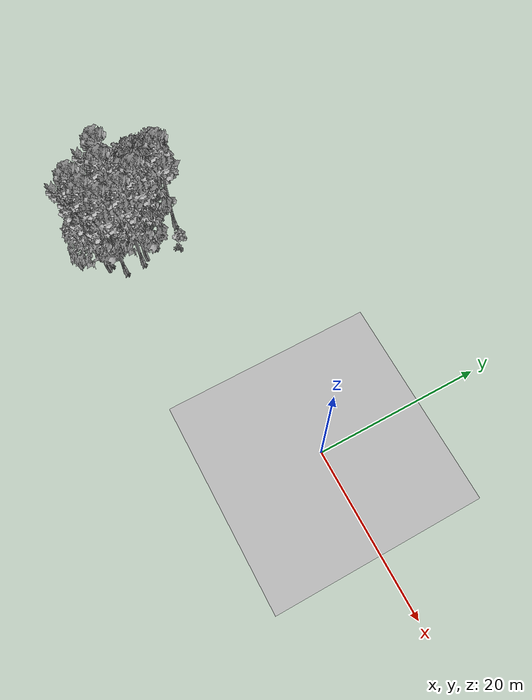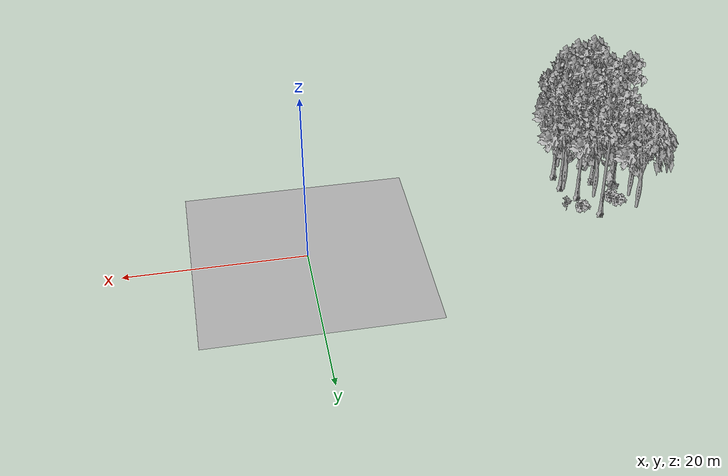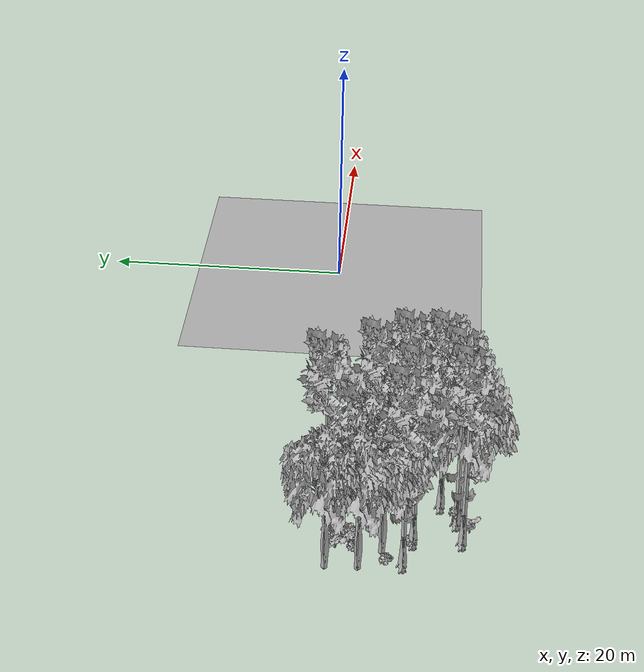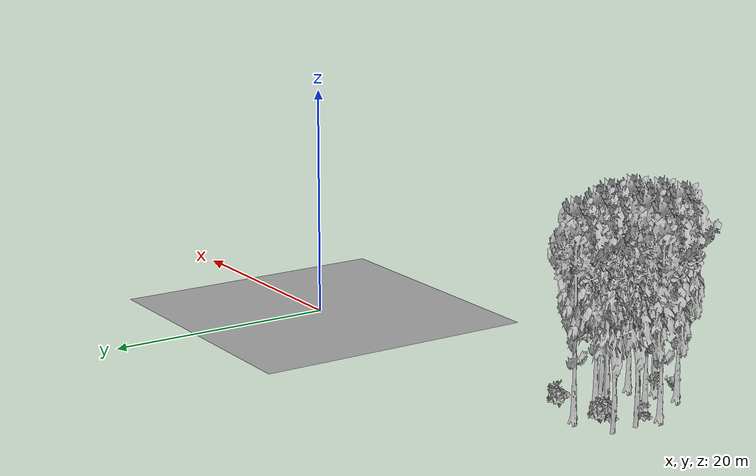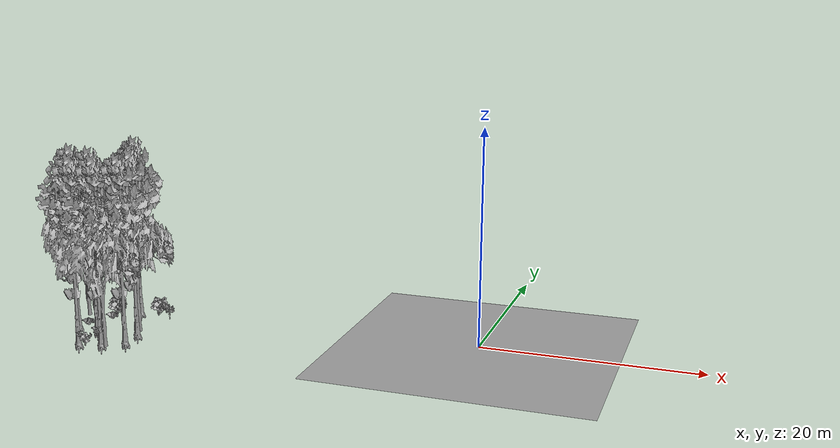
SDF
<sdf version="1.7">
 <world name="default">
  <model name="ground_plane">
   <static>1</static>
   <link name="link">
    <collision name="collision">
     <pose>-50 0 0 0 -0 0</pose>
     <geometry><plane><normal>0 0 1</normal><size>80 80</size></plane></geometry>
     <surface><contact><ode><min_depth>0.01</min_depth><max_vel>0</max_vel></ode></contact></surface>
    </collision>
    <visual name="grass">
     <cast_shadows>0</cast_shadows>
     <geometry>
      <mesh>
       <scale>0.46714285714285714 0.46714285714285714 0.1</scale>
       <uri>file://grass_plane/meshes/grass_plane.dae</uri>
      </mesh>
     </geometry>
    </visual>
   </link>
  </model>
  <model name="Tree 26">
   <static>1</static>
   <pose>-34.21865111880474 -4.678631937713277 0 1.57079 -0 0</pose>
   <link name="link">
    <collision name="collision">
     <geometry><mesh><scale>3.5 5 3.5</scale><uri>model://tree_2/meshes/tree_2.obj</uri></mesh></geometry>
    </collision>
    <visual name="visual">
     <geometry><mesh><scale>3.5 5 3.5</scale><uri>model://tree_2/meshes/tree_2.obj</uri></mesh></geometry>
    </visual>
   </link>
  </model>
  <model name="Tree 41">
   <static>1</static>
   <pose>-30.94688762826279 -7.348983029123119 0 1.57079 -0 0</pose>
   <link name="link">
    <collision name="collision">
     <geometry><mesh><scale>3.5 5 3.5</scale><uri>model://tree_9/meshes/tree_9.obj</uri></mesh></geometry>
    </collision>
    <visual name="visual">
     <geometry><mesh><scale>3.5 5 3.5</scale><uri>model://tree_9/meshes/tree_9.obj</uri></mesh></geometry>
    </visual>
   </link>
  </model>
  <model name="Tree 46">
   <static>1</static>
   <pose>-32.26716375280148 -5.137569281272789 0 1.57079 -0 0</pose>
   <link name="link">
    <collision name="collision">
     <geometry><mesh><scale>3.5 5 3.5</scale><uri>model://tree_9/meshes/tree_9.obj</uri></mesh></geometry>
    </collision>
    <visual name="visual">
     <geometry><mesh><scale>3.5 5 3.5</scale><uri>model://tree_9/meshes/tree_9.obj</uri></mesh></geometry>
    </visual>
   </link>
  </model>
  <model name="Tree 64">
   <static>1</static>
   <pose>-36.51963928887907 -5.733501632266751 0 1.57079 -0 0</pose>
   <link name="link">
    <collision name="collision">
     <geometry><mesh><scale>3.5 5 3.5</scale><uri>model://tree_2/meshes/tree_2.obj</uri></mesh></geometry>
    </collision>
    <visual name="visual">
     <geometry><mesh><scale>3.5 5 3.5</scale><uri>model://tree_2/meshes/tree_2.obj</uri></mesh></geometry>
    </visual>
   </link>
  </model>
  <model name="Tree 71">
   <static>1</static>
   <pose>-33.94451784907528 -1.6375399973635112 0 1.57079 -0 0</pose>
   <link name="link">
    <collision name="collision">
     <geometry><mesh><scale>3.5 5 3.5</scale><uri>model://tree_9/meshes/tree_9.obj</uri></mesh></geometry>
    </collision>
    <visual name="visual">
     <geometry><mesh><scale>3.5 5 3.5</scale><uri>model://tree_9/meshes/tree_9.obj</uri></mesh></geometry>
    </visual>
   </link>
  </model>
  <model name="Tree 205">
   <static>1</static>
   <pose>-37.38394206061128 -7.219815327608778 0 1.57079 -0 0</pose>
   <link name="link">
    <collision name="collision">
     <geometry><mesh><scale>3.5 5 3.5</scale><uri>model://tree_9/meshes/tree_9.obj</uri></mesh></geometry>
    </collision>
    <visual name="visual">
     <geometry><mesh><scale>3.5 5 3.5</scale><uri>model://tree_9/meshes/tree_9.obj</uri></mesh></geometry>
    </visual>
   </link>
  </model>
  <model name="Tree 217">
   <static>1</static>
   <pose>-30.804086467539534 -9.700078650680979 0 1.57079 -0 0</pose>
   <link name="link">
    <collision name="collision">
     <geometry><mesh><scale>3.5 5 3.5</scale><uri>model://tree_9/meshes/tree_9.obj</uri></mesh></geometry>
    </collision>
    <visual name="visual">
     <geometry><mesh><scale>3.5 5 3.5</scale><uri>model://tree_9/meshes/tree_9.obj</uri></mesh></geometry>
    </visual>
   </link>
  </model>
  <model name="Tree 253">
   <static>1</static>
   <pose>-38.319234094890376 -4.136180356128563 0 1.57079 -0 0</pose>
   <link name="link">
    <collision name="collision">
     <geometry><mesh><scale>3.5 5 3.5</scale><uri>model://tree_2/meshes/tree_2.obj</uri></mesh></geometry>
    </collision>
    <visual name="visual">
     <geometry><mesh><scale>3.5 5 3.5</scale><uri>model://tree_2/meshes/tree_2.obj</uri></mesh></geometry>
    </visual>
   </link>
  </model>
  <model name="Tree 295">
   <static>1</static>
   <pose>-31.16436731004118 -6.689217390887343 0 1.57079 -0 0</pose>
   <link name="link">
    <collision name="collision">
     <geometry><mesh><scale>3.5 5 3.5</scale><uri>model://tree_2/meshes/tree_2.obj</uri></mesh></geometry>
    </collision>
    <visual name="visual">
     <geometry><mesh><scale>3.5 5 3.5</scale><uri>model://tree_2/meshes/tree_2.obj</uri></mesh></geometry>
    </visual>
   </link>
  </model>
  <model name="Tree 309">
   <static>1</static>
   <pose>-31.930083497999693 -11.384446646818613 0 1.57079 -0 0</pose>
   <link name="link">
    <collision name="collision">
     <geometry><mesh><scale>3.5 5 3.5</scale><uri>model://tree_2/meshes/tree_2.obj</uri></mesh></geometry>
    </collision>
    <visual name="visual">
     <geometry><mesh><scale>3.5 5 3.5</scale><uri>model://tree_2/meshes/tree_2.obj</uri></mesh></geometry>
    </visual>
   </link>
  </model>
  <model name="Tree 442">
   <static>1</static>
   <pose>-32.593059270552914 -10.885589639417574 0 1.57079 -0 0</pose>
   <link name="link">
    <collision name="collision">
     <geometry><mesh><scale>3.5 5 3.5</scale><uri>model://tree_9/meshes/tree_9.obj</uri></mesh></geometry>
    </collision>
    <visual name="visual">
     <geometry><mesh><scale>3.5 5 3.5</scale><uri>model://tree_9/meshes/tree_9.obj</uri></mesh></geometry>
    </visual>
   </link>
  </model>
  <model name="Tree 477">
   <static>1</static>
   <pose>-34.66852728274036 -11.358503340210511 0 1.57079 -0 0</pose>
   <link name="link">
    <collision name="collision">
     <geometry><mesh><scale>3.5 5 3.5</scale><uri>model://tree_9/meshes/tree_9.obj</uri></mesh></geometry>
    </collision>
    <visual name="visual">
     <geometry><mesh><scale>3.5 5 3.5</scale><uri>model://tree_9/meshes/tree_9.obj</uri></mesh></geometry>
    </visual>
   </link>
  </model>
  <model name="Tree 572">
   <static>1</static>
   <pose>-34.927748254431435 -7.854634039136926 0 1.57079 -0 0</pose>
   <link name="link">
    <collision name="collision">
     <geometry><mesh><scale>3.5 5 3.5</scale><uri>model://tree_9/meshes/tree_9.obj</uri></mesh></geometry>
    </collision>
    <visual name="visual">
     <geometry><mesh><scale>3.5 5 3.5</scale><uri>model://tree_9/meshes/tree_9.obj</uri></mesh></geometry>
    </visual>
   </link>
  </model>
  <model name="Tree 631">
   <static>1</static>
   <pose>-38.419032252062564 -1.8267353542821354 0 1.57079 -0 0</pose>
   <link name="link">
    <collision name="collision">
     <geometry><mesh><scale>3.5 5 3.5</scale><uri>model://tree_2/meshes/tree_2.obj</uri></mesh></geometry>
    </collision>
    <visual name="visual">
     <geometry><mesh><scale>3.5 5 3.5</scale><uri>model://tree_2/meshes/tree_2.obj</uri></mesh></geometry>
    </visual>
   </link>
  </model>
  <model name="Bush 40">
   <static>1</static>
   <pose>-33.63839044306999 -11.841959616744823 0 1.57079 -0 0</pose>
   <link name="link">
    <collision name="collision">
     <geometry><mesh><scale>2 2 2</scale><uri>model://bush_0/meshes/bush_0.obj</uri></mesh></geometry>
     <surface><contact><collide_without_contact>false</collide_without_contact></contact></surface>
    </collision>
    <visual name="visual">
     <geometry><mesh><scale>2 2 2</scale><uri>model://bush_0/meshes/bush_0.obj</uri></mesh></geometry>
    </visual>
   </link>
  </model>
  <model name="Bush 229">
   <static>1</static>
   <pose>-31.770346939761595 -2.017970891681287 0 1.57079 -0 0</pose>
   <link name="link">
    <collision name="collision">
     <geometry><mesh><scale>2 2 2</scale><uri>model://bush_1/meshes/bush_1.obj</uri></mesh></geometry>
     <surface><contact><collide_without_contact>false</collide_without_contact></contact></surface>
    </collision>
    <visual name="visual">
     <geometry><mesh><scale>2 2 2</scale><uri>model://bush_1/meshes/bush_1.obj</uri></mesh></geometry>
    </visual>
   </link>
  </model>
  <model name="Bush 249">
   <static>1</static>
   <pose>-35.641412602418285 -3.382280582185956 0 1.57079 -0 0</pose>
   <link name="link">
    <collision name="collision">
     <geometry><mesh><scale>2 2 2</scale><uri>model://bush_1/meshes/bush_1.obj</uri></mesh></geometry>
     <surface><contact><collide_without_contact>false</collide_without_contact></contact></surface>
    </collision>
    <visual name="visual">
     <geometry><mesh><scale>2 2 2</scale><uri>model://bush_1/meshes/bush_1.obj</uri></mesh></geometry>
    </visual>
   </link>
  </model>
  <model name="Bush 315">
   <static>1</static>
   <pose>-35.961627157605975 -3.717536200814777 0 1.57079 -0 0</pose>
   <link name="link">
    <collision name="collision">
     <geometry><mesh><scale>2 2 2</scale><uri>model://bush_2/meshes/bush_2.obj</uri></mesh></geometry>
     <surface><contact><collide_without_contact>false</collide_without_contact></contact></surface>
    </collision>
    <visual name="visual">
     <geometry><mesh><scale>2 2 2</scale><uri>model://bush_2/meshes/bush_2.obj</uri></mesh></geometry>
    </visual>
   </link>
  </model>
  <model name="Bush 319">
   <static>1</static>
   <pose>-32.81552971901171 -10.617341425720596 0 1.57079 -0 0</pose>
   <link name="link">
    <collision name="collision">
     <geometry><mesh><scale>2 2 2</scale><uri>model://bush_5/meshes/bush_5.obj</uri></mesh></geometry>
     <surface><contact><collide_without_contact>false</collide_without_contact></contact></surface>
    </collision>
    <visual name="visual">
     <geometry><mesh><scale>2 2 2</scale><uri>model://bush_5/meshes/bush_5.obj</uri></mesh></geometry>
    </visual>
   </link>
  </model>
  <model name="Bush 429">
   <static>1</static>
   <pose>-35.04203318318169 -7.67937706478655 0 1.57079 -0 0</pose>
   <link name="link">
    <collision name="collision">
     <geometry><mesh><scale>2 2 2</scale><uri>model://bush_2/meshes/bush_2.obj</uri></mesh></geometry>
     <surface><contact><collide_without_contact>false</collide_without_contact></contact></surface>
    </collision>
    <visual name="visual">
     <geometry><mesh><scale>2 2 2</scale><uri>model://bush_2/meshes/bush_2.obj</uri></mesh></geometry>
    </visual>
   </link>
  </model>
  <model name="Bush 481">
   <static>1</static>
   <pose>-36.19736164482962 -2.4132348835840247 0 1.57079 -0 0</pose>
   <link name="link">
    <collision name="collision">
     <geometry><mesh><scale>2 2 2</scale><uri>model://bush_1/meshes/bush_1.obj</uri></mesh></geometry>
     <surface><contact><collide_without_contact>false</collide_without_contact></contact></surface>
    </collision>
    <visual name="visual">
     <geometry><mesh><scale>2 2 2</scale><uri>model://bush_1/meshes/bush_1.obj</uri></mesh></geometry>
    </visual>
   </link>
  </model>
  <model name="Bush 483">
   <static>1</static>
   <pose>-30.17289751209556 -2.615061841975475 0 1.57079 -0 0</pose>
   <link name="link">
    <collision name="collision">
     <geometry><mesh><scale>2 2 2</scale><uri>model://bush_5/meshes/bush_5.obj</uri></mesh></geometry>
     <surface><contact><collide_without_contact>false</collide_without_contact></contact></surface>
    </collision>
    <visual name="visual">
     <geometry><mesh><scale>2 2 2</scale><uri>model://bush_5/meshes/bush_5.obj</uri></mesh></geometry>
    </visual>
   </link>
  </model>
  <model name="Bush 530">
   <static>1</static>
   <pose>-37.12409917033497 -6.0611252740352555 0 1.57079 -0 0</pose>
   <link name="link">
    <collision name="collision">
     <geometry><mesh><scale>2 2 2</scale><uri>model://bush_2/meshes/bush_2.obj</uri></mesh></geometry>
     <surface><contact><collide_without_contact>false</collide_without_contact></contact></surface>
    </collision>
    <visual name="visual">
     <geometry><mesh><scale>2 2 2</scale><uri>model://bush_2/meshes/bush_2.obj</uri></mesh></geometry>
    </visual>
   </link>
  </model>
 </world>
</sdf>
